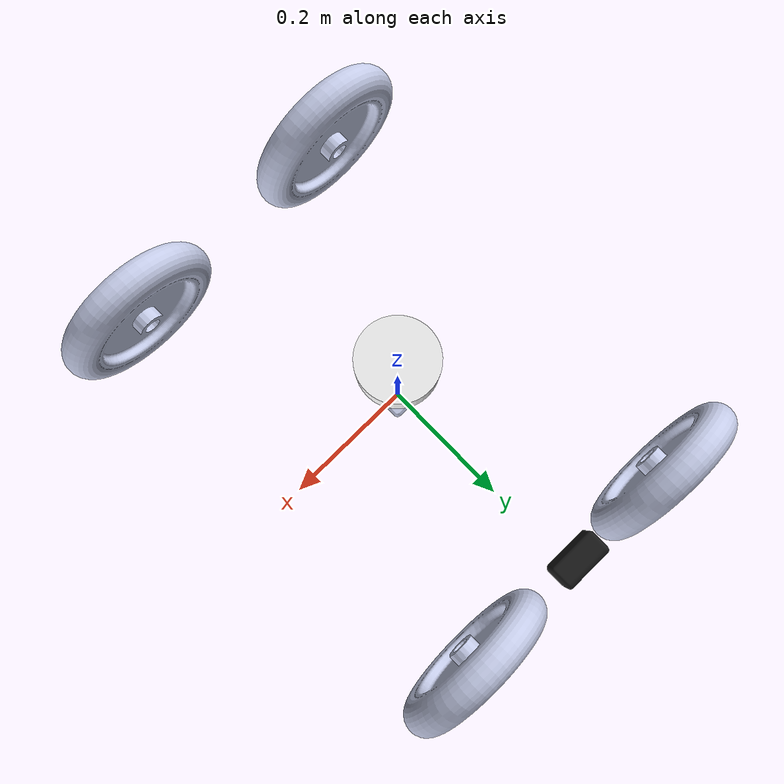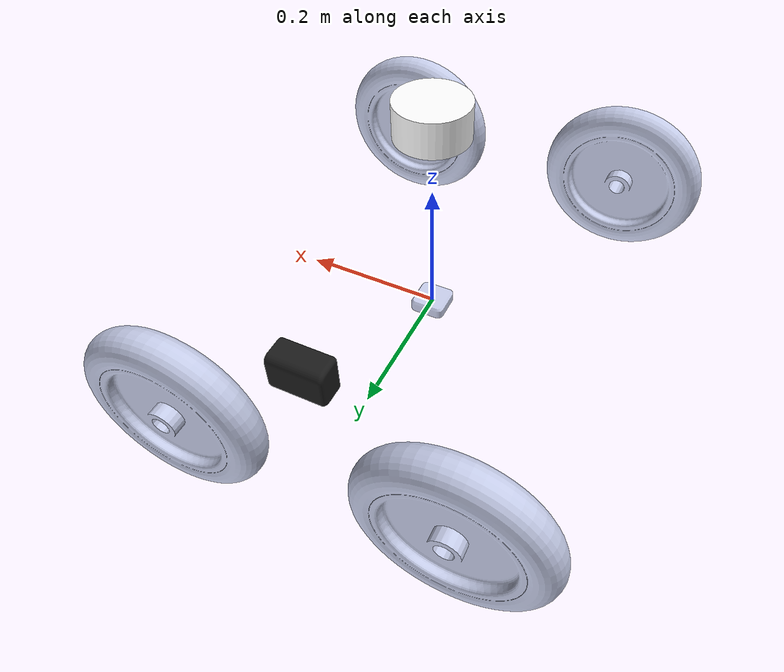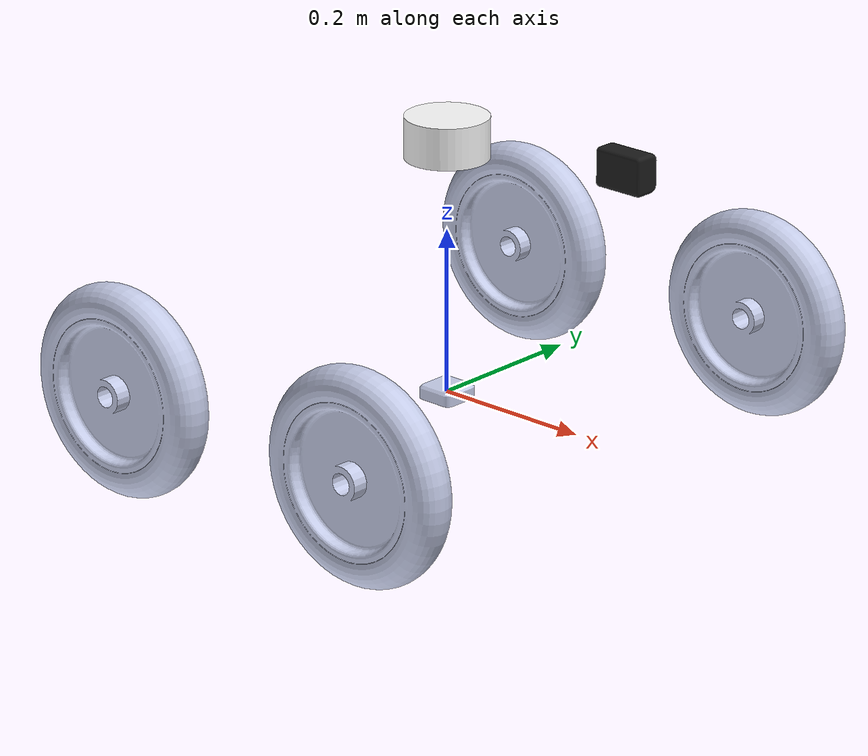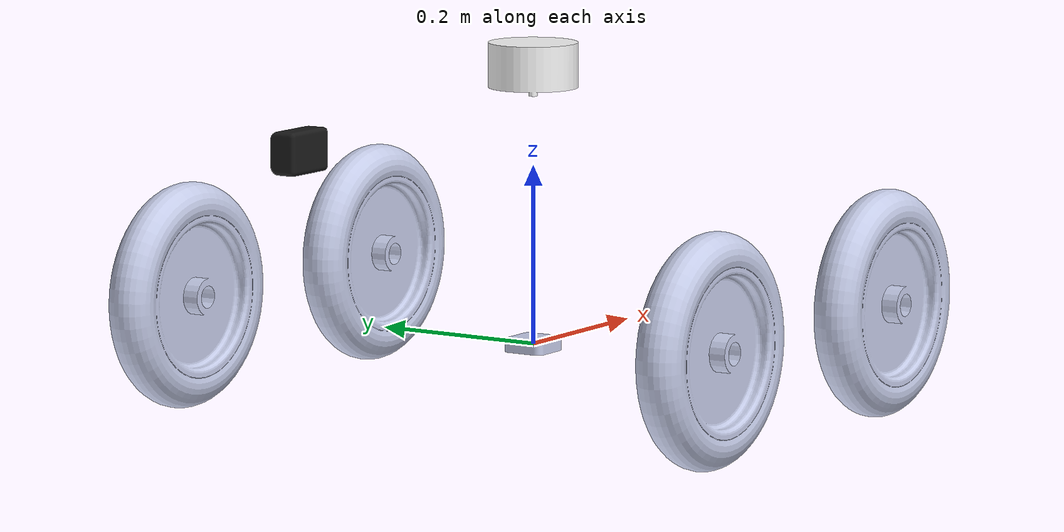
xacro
<?xml version="1.0"?>
<robot xmlns:xacro="http://www.ros.org/wiki/xacro" >
  <link
    name="base_link">
    <inertial>
      <origin
        xyz="0.0110814300591425 -1.07283050729823E-05 0.17657272751503"
        rpy="0 0 0" />
      <mass
        value="13.4817350958382" />
      <inertia
        ixx="0.314898837628642"
        ixy="-1.83915405182082E-05"
        ixz="9.71911553669445E-05"
        iyy="0.27110302696631"
        iyz="-2.51545485645537E-07"
        izz="0.545868688934175" />
    </inertial>
    <visual>
      <origin
        xyz="0 0 0"
        rpy="0 0 0" />
      <geometry>
        <mesh
          filename="file:///home/sunilkumar/dev_ws/src/my_bot/meshes/base_link.STL" />
      </geometry>
      <material
        name="">
        <color
          rgba="0.792156862745098 0.819607843137255 0.933333333333333 1" />
      </material>
    </visual>
    <collision>
      <origin
        xyz="0 0 0"
        rpy="0 0 0" />
      <geometry>
        <mesh
          filename="file:///home/sunilkumar/dev_ws/src/my_bot/meshes/base_link.STL" />
      </geometry>
    </collision>
  </link>
  <link
    name="front_left_wheel">
    <inertial>
      <origin
        xyz="3.83026943495679E-15 -1.13145603997111E-13 -0.0289999999999808"
        rpy="0 0 0" />
      <mass
        value="1.76533942503771" />
      <inertia
        ixx="0.00818088481028512"
        ixy="1.17455235352596E-18"
        ixz="5.62382982653917E-20"
        iyy="0.00818088481028512"
        iyz="2.65575231975444E-17"
        izz="0.0158038579869233" />
    </inertial>
    <visual>
      <origin
        xyz="0 0 0"
        rpy="0 0 0" />
      <geometry>
        <mesh
          filename="file:///home/sunilkumar/dev_ws/src/my_bot/meshes/front_left_wheel.STL" />
      </geometry>
      <material
        name="">
        <color
          rgba="0.792156862745098 0.819607843137255 0.933333333333333 1" />
      </material>
    </visual>
    <collision>
      <origin
        xyz="0 0 0"
        rpy="0 0 0" />
      <geometry>
        <mesh
          filename="file:///home/sunilkumar/dev_ws/src/my_bot/meshes/front_left_wheel.STL" />
      </geometry>
    </collision>
  </link>
  <joint
    name="front_left_wheel_joint"
    type="continuous">
    <origin
      xyz="0.18566 0.37 0.0505"
      rpy="-1.5708 0 0" />
    <parent
      link="base_link" />
    <child
      link="front_left_wheel" />
    <axis
      xyz="0 0 1" />
    <limit
      effort="1"
      velocity="1" />
  </joint>
  <link
    name="front_right_wheel">
    <inertial>
      <origin
        xyz="0 -5.55111512312578E-17 -0.029"
        rpy="0 0 0" />
      <mass
        value="1.76533942503771" />
      <inertia
        ixx="0.00818088481028511"
        ixy="1.55583818346496E-18"
        ixz="-1.57805560009028E-20"
        iyy="0.00818088481028511"
        iyz="2.76541224531879E-17"
        izz="0.0158038579869233" />
    </inertial>
    <visual>
      <origin
        xyz="0 0 0"
        rpy="0 0 0" />
      <geometry>
        <mesh
          filename="file:///home/sunilkumar/dev_ws/src/my_bot/meshes/front_right_wheel.STL" />
      </geometry>
      <material
        name="">
        <color
          rgba="0.792156862745098 0.819607843137255 0.933333333333333 1" />
      </material>
    </visual>
    <collision>
      <origin
        xyz="0 0 0"
        rpy="0 0 0" />
      <geometry>
        <mesh
          filename="file:///home/sunilkumar/dev_ws/src/my_bot/meshes/front_right_wheel.STL" />
      </geometry>
    </collision>
  </link>
  <joint
    name="front_right_wheel_joint"
    type="continuous">
    <origin
      xyz="0.18566 -0.37 0.0505"
      rpy="1.5708 0 0" />
    <parent
      link="base_link" />
    <child
      link="front_right_wheel" />
    <axis
      xyz="0 0 -1" />
    <limit
      effort="1"
      velocity="1" />
  </joint>
  <link
    name="back_right_wheel">
    <inertial>
      <origin
        xyz="2.77555756156289E-17 -1.2490009027033E-16 -0.029"
        rpy="0 0 0" />
      <mass
        value="1.76533942503771" />
      <inertia
        ixx="0.00818088481028511"
        ixy="-8.31221665572215E-19"
        ixz="-1.63529138250933E-19"
        iyy="0.00818088481028511"
        iyz="5.33492516736472E-17"
        izz="0.0158038579869233" />
    </inertial>
    <visual>
      <origin
        xyz="0 0 0"
        rpy="0 0 0" />
      <geometry>
        <mesh
          filename="file:///home/sunilkumar/dev_ws/src/my_bot/meshes/back_right_wheel.STL" />
      </geometry>
      <material
        name="">
        <color
          rgba="0.792156862745098 0.819607843137255 0.933333333333333 1" />
      </material>
    </visual>
    <collision>
      <origin
        xyz="0 0 0"
        rpy="0 0 0" />
      <geometry>
        <mesh
          filename="file:///home/sunilkumar/dev_ws/src/my_bot/meshes/back_right_wheel.STL" />
      </geometry>
    </collision>
  </link>
  <joint
    name="back_right_wheel_joint"
    type="continuous">
    <origin
      xyz="-0.18566 -0.37 0.0505"
      rpy="1.5708 0 0" />
    <parent
      link="base_link" />
    <child
      link="back_right_wheel" />
    <axis
      xyz="0 0 -1" />
    <limit
      effort="1"
      velocity="1" />
  </joint>
  <link
    name="back_left_wheel">
    <inertial>
      <origin
        xyz="-2.77555756156289E-17 -1.11022302462516E-16 -0.0289999999999999"
        rpy="0 0 0" />
      <mass
        value="1.76533942503771" />
      <inertia
        ixx="0.00818088481028512"
        ixy="8.31221665572211E-19"
        ixz="1.55058808778393E-19"
        iyy="0.00818088481028512"
        iyz="2.65575231975444E-17"
        izz="0.0158038579869233" />
    </inertial>
    <visual>
      <origin
        xyz="0 0 0"
        rpy="0 0 0" />
      <geometry>
        <mesh
          filename="file:///home/sunilkumar/dev_ws/src/my_bot/meshes/back_left_wheel.STL" />
      </geometry>
      <material
        name="">
        <color
          rgba="0.792156862745098 0.819607843137255 0.933333333333333 1" />
      </material>
    </visual>
    <collision>
      <origin
        xyz="0 0 0"
        rpy="0 0 0" />
      <geometry>
        <mesh
          filename="file:///home/sunilkumar/dev_ws/src/my_bot/meshes/back_left_wheel.STL" />
      </geometry>
    </collision>
  </link>
  <joint
    name="back_left_wheel_joint"
    type="continuous">
    <origin
      xyz="-0.18566 0.37 0.0505"
      rpy="-1.5708 0 0" />
    <parent
      link="base_link" />
    <child
      link="back_left_wheel" />
    <axis
      xyz="0 0 1" />
    <limit
      effort="1"
      velocity="1" />
  </joint>
  <link
    name="laser_frame">
    <inertial>
      <origin
        xyz="0 0 -0.023086642599278"
        rpy="0 0 0" />
      <mass
        value="0.221906397086315" />
      <inertia
        ixx="0.000242495228227766"
        ixy="4.65303363426644E-21"
        ixz="-3.20040229450624E-20"
        iyy="0.000242495228227766"
        iyz="6.92322839032914E-22"
        izz="0.000357143125094018" />
    </inertial>
    <visual>
      <origin
        xyz="0 0 0"
        rpy="0 0 0" />
      <geometry>
        <mesh
          filename="file:///home/sunilkumar/dev_ws/src/my_bot/meshes/laser_frame.STL" />
      </geometry>
      <material
        name="">
        <color
          rgba="1 1 1 1" />
      </material>
    </visual>
    <collision>
      <origin
        xyz="0 0 0"
        rpy="0 0 0" />
      <geometry>
        <mesh
          filename="file:///home/sunilkumar/dev_ws/src/my_bot/meshes/laser_frame.STL" />
      </geometry>
    </collision>
  </link>
  <joint
    name="laser_joint"
    type="fixed">
    <origin
      xyz="0 0 0.338"
      rpy="0 0 0" />
    <parent
      link="base_link" />
    <child
      link="laser_frame" />
    <axis
      xyz="0 0 0" />
  </joint>
  <link
    name="rtk">
    <inertial>
      <origin
        xyz="-6.93889390390723E-18 -0.0177792493500667 1.38777878078145E-17"
        rpy="0 0 0" />
      <mass
        value="0.125333177215754" />
      <inertia
        ixx="3.66776232929053E-05"
        ixy="-8.99775104438633E-22"
        ixz="8.49774290725455E-21"
        iyy="7.45130452436299E-05"
        iyz="-2.84702837671062E-21"
        izz="6.19722649600281E-05" />
    </inertial>
    <visual>
      <origin
        xyz="0 0 0"
        rpy="0 0 0" />
      <geometry>
        <mesh
          filename="file:///home/sunilkumar/dev_ws/src/my_bot/meshes/rtk.STL" />
      </geometry>
      <material
        name="">
        <color
          rgba="0.109803921568627 0.109803921568627 0.109803921568627 1" />
      </material>
    </visual>
    <collision>
      <origin
        xyz="0 0 0"
        rpy="0 0 0" />
      <geometry>
        <mesh
          filename="file:///home/sunilkumar/dev_ws/src/my_bot/meshes/rtk.STL" />
      </geometry>
    </collision>
  </link>
  <joint
    name="rtk_joint"
    type="fixed">
    <origin
      xyz="0 0.335 0.193"
      rpy="0 0 0" />
    <parent
      link="base_link" />
    <child
      link="rtk" />
    <axis
      xyz="0 0 0" />
  </joint>
</robot>
